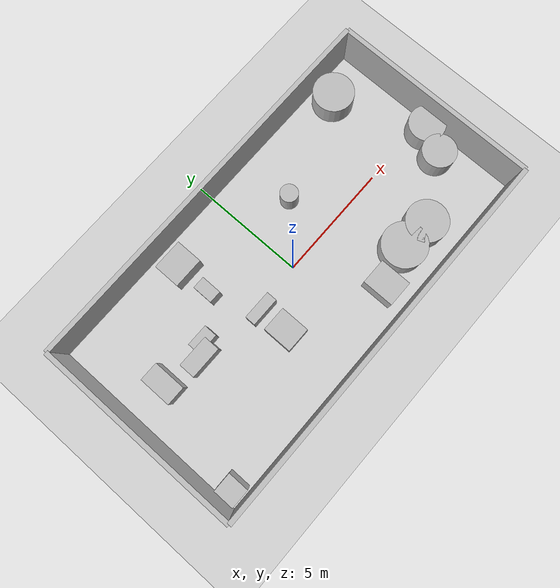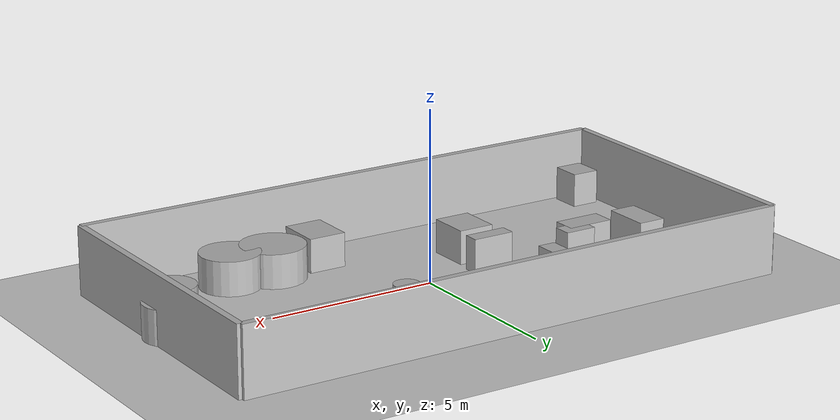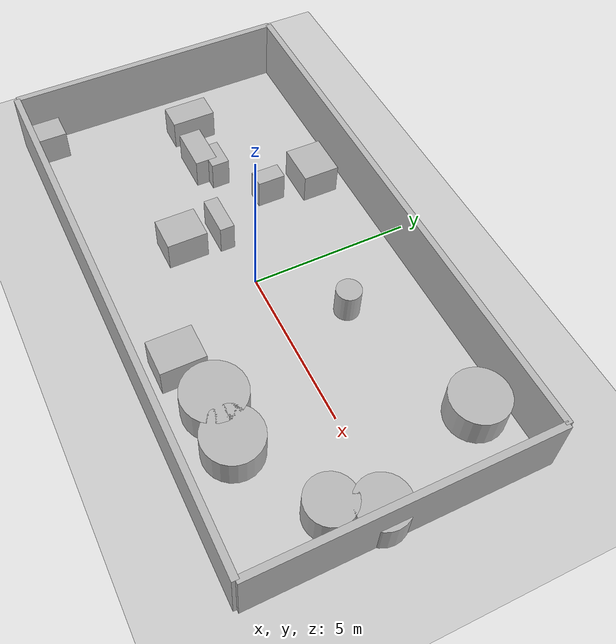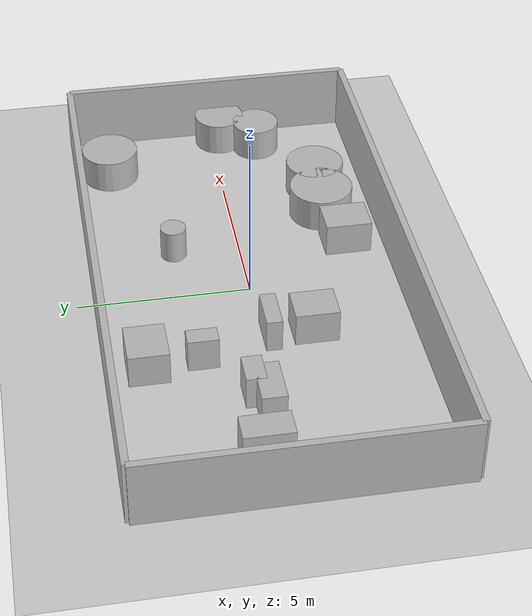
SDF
<?xml version="1.0"?>
<sdf version="1.6">
  <world name="env_32">

    <include><uri>model://ground_plane</uri></include>
    <include><uri>model://sun</uri></include>

    <!-- WALLS -->
    <model name="wall_north"><static>true</static><pose>0 4.423861291686212 1 0 0 0</pose>
      <link name="link"><collision name="collision">
        <geometry><box><size>16.79739020796844 0.2 2</size></box></geometry>
      </collision><visual name="visual">
        <geometry><box><size>16.79739020796844 0.2 2</size></box></geometry>
      </visual></link>
    </model>

    <model name="wall_south"><static>true</static><pose>0 -4.423861291686212 1 0 0 0</pose>
      <link name="link"><collision name="collision">
        <geometry><box><size>16.79739020796844 0.2 2</size></box></geometry>
      </collision><visual name="visual">
        <geometry><box><size>16.79739020796844 0.2 2</size></box></geometry>
      </visual></link>
    </model>

    <model name="wall_east"><static>true</static><pose>8.39869510398422 0 1 0 0 1.57</pose>
      <link name="link"><collision name="collision">
        <geometry><box><size>8.847722583372423 0.2 2</size></box></geometry>
      </collision><visual name="visual">
        <geometry><box><size>8.847722583372423 0.2 2</size></box></geometry>
      </visual></link>
    </model>

    <model name="wall_west"><static>true</static><pose>-8.39869510398422 0 1 0 0 1.57</pose>
      <link name="link"><collision name="collision">
        <geometry><box><size>8.847722583372423 0.2 2</size></box></geometry>
      </collision><visual name="visual">
        <geometry><box><size>8.847722583372423 0.2 2</size></box></geometry>
      </visual></link>
    </model>

    <!-- SENSOR -->

    <model name="lidar_sensor">
      <static>true</static>
      <pose>-7.23637158176042 -3.3697720142988645 0.4 0 0 0</pose>
      <link name="link">
        <sensor name="lidar" type="ray">
          <pose>0 0 0 0 0 0</pose>
          <visualize>true</visualize>
          <always_on>true</always_on>
          <update_rate>10</update_rate>
          <ray>
            <scan><horizontal>
              <samples>180</samples>
              <resolution>1</resolution>
              <min_angle>-3.14159</min_angle>
              <max_angle>3.14159</max_angle>
            </horizontal></scan>
            <range><min>0.15</min><max>20.0</max><resolution>0.01</resolution></range>
          </ray>
          <plugin name="lidar_plugin" filename="liblidar_plugin.so"/>
        </sensor>
      </link>
    </model>

    <!-- OBSTACLES -->

    <model name="obstacle_0">
      <static>true</static>
      <pose>-2.9137622529056273 3.3318081321654143 0.5 0 0 0</pose>
      <link name="link">
        <collision name="collision">
          <geometry><box><size>1.3 1.14 1.0</size></box></geometry>
        </collision>
        <visual name="visual">
          <geometry><box><size>1.3 1.14 1.0</size></box></geometry>
        </visual>
      </link>
    </model>

    <model name="obstacle_1">
      <static>true</static>
      <pose>-4.982533831628816 0.30627555035868426 0.5 0 0 0</pose>
      <link name="link">
        <collision name="collision">
          <geometry><box><size>1.38 0.69 1.0</size></box></geometry>
        </collision>
        <visual name="visual">
          <geometry><box><size>1.38 0.69 1.0</size></box></geometry>
        </visual>
      </link>
    </model>

    <model name="obstacle_2">
      <static>true</static>
      <pose>4.708360837659264 -2.849902326076658 0.5 0 0 0</pose>
      <link name="link">
        <collision name="collision">
          <geometry><cylinder><radius>0.88</radius><length>1.0</length></cylinder></geometry>
        </collision>
        <visual name="visual">
          <geometry><cylinder><radius>0.88</radius><length>1.0</length></cylinder></geometry>
        </visual>
      </link>
    </model>

    <model name="obstacle_3">
      <static>true</static>
      <pose>7.282011604473302 -1.416476562352813 0.5 0 0 0</pose>
      <link name="link">
        <collision name="collision">
          <geometry><cylinder><radius>0.72</radius><length>1.0</length></cylinder></geometry>
        </collision>
        <visual name="visual">
          <geometry><cylinder><radius>0.72</radius><length>1.0</length></cylinder></geometry>
        </visual>
      </link>
    </model>

    <model name="obstacle_4">
      <static>true</static>
      <pose>-6.605031154670527 0.6816354593183727 0.5 0 0 0</pose>
      <link name="link">
        <collision name="collision">
          <geometry><box><size>0.82 1.39 1.0</size></box></geometry>
        </collision>
        <visual name="visual">
          <geometry><box><size>0.82 1.39 1.0</size></box></geometry>
        </visual>
      </link>
    </model>

    <model name="obstacle_5">
      <static>true</static>
      <pose>6.434574840808558 3.3987152626508585 0.5 0 0 0</pose>
      <link name="link">
        <collision name="collision">
          <geometry><cylinder><radius>0.86</radius><length>1.0</length></cylinder></geometry>
        </collision>
        <visual name="visual">
          <geometry><cylinder><radius>0.86</radius><length>1.0</length></cylinder></geometry>
        </visual>
      </link>
    </model>

    <model name="obstacle_6">
      <static>true</static>
      <pose>3.3915140242762067 -2.7844443759487185 0.5 0 0 0</pose>
      <link name="link">
        <collision name="collision">
          <geometry><cylinder><radius>0.95</radius><length>1.0</length></cylinder></geometry>
        </collision>
        <visual name="visual">
          <geometry><cylinder><radius>0.95</radius><length>1.0</length></cylinder></geometry>
        </visual>
      </link>
    </model>

    <model name="obstacle_7">
      <static>true</static>
      <pose>2.022549752653049 1.9566400457206186 0.5 0 0 0</pose>
      <link name="link">
        <collision name="collision">
          <geometry><cylinder><radius>0.38</radius><length>1.0</length></cylinder></geometry>
        </collision>
        <visual name="visual">
          <geometry><cylinder><radius>0.38</radius><length>1.0</length></cylinder></geometry>
        </visual>
      </link>
    </model>

    <model name="obstacle_8">
      <static>true</static>
      <pose>1.7877078165068347 -3.197847531758467 0.5 0 0 0</pose>
      <link name="link">
        <collision name="collision">
          <geometry><box><size>1.11 1.36 1.0</size></box></geometry>
        </collision>
        <visual name="visual">
          <geometry><box><size>1.11 1.36 1.0</size></box></geometry>
        </visual>
      </link>
    </model>

    <model name="obstacle_9">
      <static>true</static>
      <pose>-4.439692978905006 0.6521159566758232 0.5 0 0 0</pose>
      <link name="link">
        <collision name="collision">
          <geometry><box><size>0.93 0.56 1.0</size></box></geometry>
        </collision>
        <visual name="visual">
          <geometry><box><size>0.93 0.56 1.0</size></box></geometry>
        </visual>
      </link>
    </model>

    <model name="obstacle_10">
      <static>true</static>
      <pose>-2.086042875636731 -1.4633215076886885 0.5 0 0 0</pose>
      <link name="link">
        <collision name="collision">
          <geometry><box><size>1.06 1.25 1.0</size></box></geometry>
        </collision>
        <visual name="visual">
          <geometry><box><size>1.06 1.25 1.0</size></box></geometry>
        </visual>
      </link>
    </model>

    <model name="obstacle_11">
      <static>true</static>
      <pose>-2.9264555032341217 1.8078282038285503 0.5 0 0 0</pose>
      <link name="link">
        <collision name="collision">
          <geometry><box><size>0.53 0.87 1.0</size></box></geometry>
        </collision>
        <visual name="visual">
          <geometry><box><size>0.53 0.87 1.0</size></box></geometry>
        </visual>
      </link>
    </model>

    <model name="obstacle_12">
      <static>true</static>
      <pose>-2.1110658346793896 -0.22645520297269117 0.5 0 0 0</pose>
      <link name="link">
        <collision name="collision">
          <geometry><box><size>1.25 0.45 1.0</size></box></geometry>
        </collision>
        <visual name="visual">
          <geometry><box><size>1.25 0.45 1.0</size></box></geometry>
        </visual>
      </link>
    </model>

    <model name="obstacle_13">
      <static>true</static>
      <pose>-7.728391548685206 -3.7649298034649368 0.5 0 0 0</pose>
      <link name="link">
        <collision name="collision">
          <geometry><box><size>0.83 0.9 1.0</size></box></geometry>
        </collision>
        <visual name="visual">
          <geometry><box><size>0.83 0.9 1.0</size></box></geometry>
        </visual>
      </link>
    </model>

    <model name="obstacle_14">
      <static>true</static>
      <pose>7.873815379191965 -0.31428852442443267 0.5 0 0 0</pose>
      <link name="link">
        <collision name="collision">
          <geometry><cylinder><radius>0.77</radius><length>1.0</length></cylinder></geometry>
        </collision>
        <visual name="visual">
          <geometry><cylinder><radius>0.77</radius><length>1.0</length></cylinder></geometry>
        </visual>
      </link>
    </model>

  </world>
</sdf>
